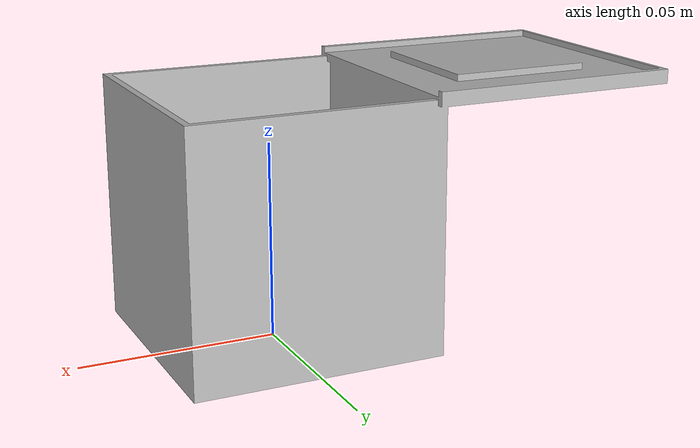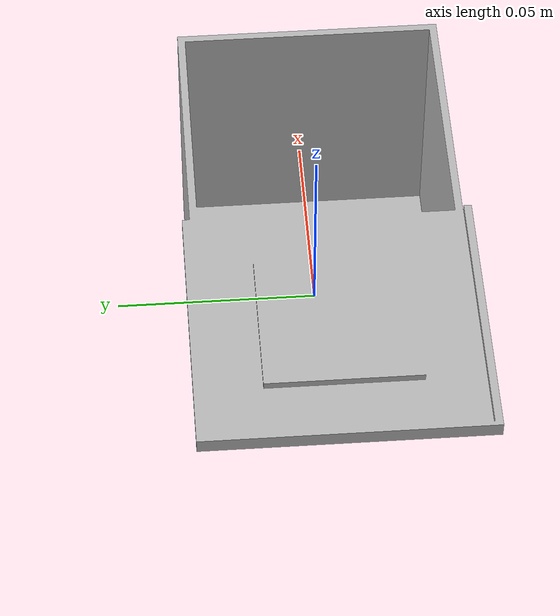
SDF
<?xml version="1.0" ?>
<sdf version="1.5">
  <model name="box_b0">
    <static>true</static>
    <link name="box_b0_link">

      <collision name="collision">
        <geometry>
          <mesh>
            <uri>model://boxes/b0/meshes/b0.dae</uri>
            <scale>0.6 0.6 0.6</scale>
          </mesh>
        </geometry>
        <pose>0 0 0.0 0 0 0</pose>
      </collision>

      <visual name="visual">
        <geometry>
          <mesh>
            <uri>model://boxes/b0/meshes/b0.dae</uri>
            <scale>0.6 0.6 0.6</scale>
          </mesh>
        </geometry>
        <material>
          <script>
            <uri>model://boxes/b0/materials/scripts</uri>
            <uri>model://boxes/b0/materials/textures</uri>
            <name>B0/Diffuse</name>
          </script>
        </material>
      </visual>

      <inertial>
        <pose>0 0 0 0 0 0</pose>
        <inertia>
          <ixx>0.1</ixx>
          <ixy>0.1</ixy>
          <ixz>0.1</ixz>
          <iyy>0.1</iyy>
          <iyz>0.1</iyz>
          <izz>0.1</izz>
        </inertia>
        <mass>0.14</mass>
      </inertial>

    </link>
  </model>
</sdf>
